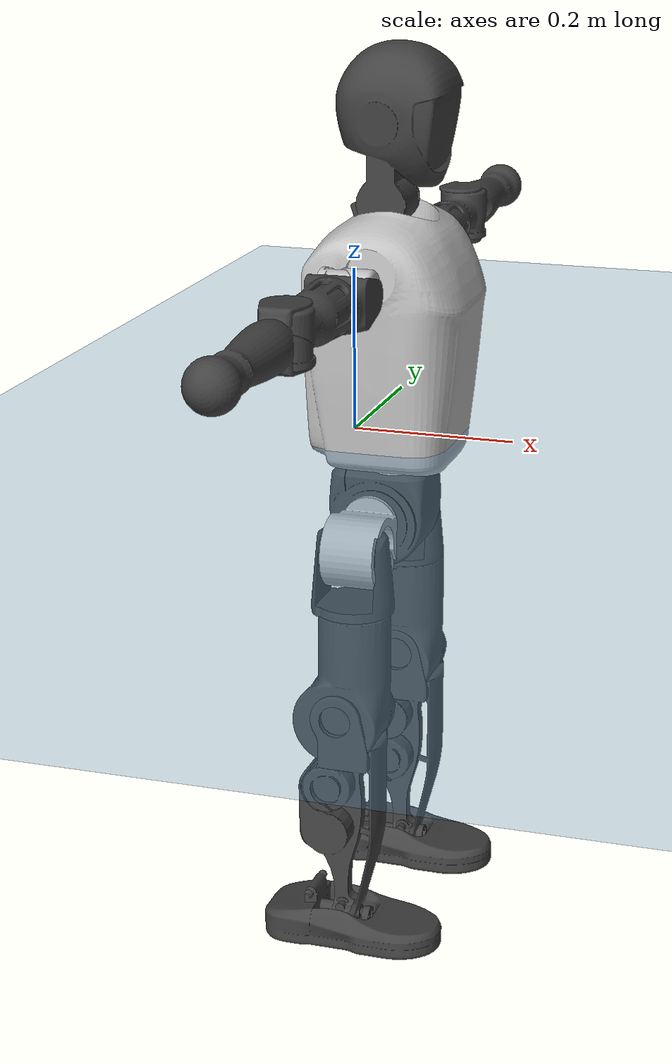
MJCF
<mujoco model="T1">
  <compiler angle="radian" assetdir="assets" balanceinertia="true" inertiafromgeom="false"/>

  <option timestep="0.005" density="1.2" viscosity="2e-05"/>

  <size nkey="1"/>

  <visual>
    <quality shadowsize="8192"/>
    <map shadowclip="0.5"/>
  </visual>

  <default>
    <default class="/">
      <joint armature="0.01" damping="0.01" frictionloss="0.1"/>
      <geom contype="0" conaffinity="0" group="1" solref="-1000 -80"/>
      <site size="0.01 0.005 0.005" group="5"/>
      <general forcelimited="true" biastype="affine" gainprm="25" biasprm="0 -25 -0.6"/>
      <default class="t1">
        <geom rgba="0.25 0.25 0.25 1"/>
        <default class="visual">
          <geom type="mesh" group="2"/>
        </default>
        <default class="collision">
          <geom group="3"/>
        </default>
        <default class="foot">
          <geom size="0.1115 0.05 0.015" type="box" condim="6" group="4" priority="1" solimp="0.015 1 0.015"/>
        </default>
        <default class="reward_collision_sphere">
          <geom group="5" rgba="1 0 0 1"/>
        </default>
      </default>
    </default>
  </default>

  <asset>
    <texture type="skybox" colorspace="auto" name="//unnamed_texture_0" builtin="gradient" rgb1="0.95 0.95 0.95" rgb2="0.95 0.95 0.95" width="100" height="600"/>
    <texture type="2d" colorspace="auto" name="texplane" builtin="checker" rgb1="0.345 0.575 0.748" rgb2="0.345 0.575 0.748" markrgb="1 1 1" width="512" height="512"/>
    <material name="MatPlane" class="/" texture="texplane" texuniform="true" texrepeat="2 2" specular="0.9"/>
    <mesh name="Trunk" class="/" file="Trunk.stl"/>
    <mesh name="H1" class="/" file="H1.stl"/>
    <mesh name="H2" class="/" file="H2.stl"/>
    <mesh name="AL1" class="/" file="AL1.stl"/>
    <mesh name="AL2" class="/" file="AL2.stl"/>
    <mesh name="AL3" class="/" file="AL3.stl"/>
    <mesh name="left_hand_link" class="/" file="left_hand_link.stl"/>
    <mesh name="AR1" class="/" file="AR1.stl"/>
    <mesh name="AR2" class="/" file="AR2.stl"/>
    <mesh name="AR3" class="/" file="AR3.stl"/>
    <mesh name="right_hand_link" class="/" file="right_hand_link.stl"/>
    <mesh name="Waist" class="/" file="Waist.stl"/>
    <mesh name="Hip_Pitch_Left" class="/" file="Hip_Pitch_Left.stl"/>
    <mesh name="Hip_Roll_Left" class="/" file="Hip_Roll_Left.stl"/>
    <mesh name="Hip_Yaw_Left" class="/" file="Hip_Yaw_Left.stl"/>
    <mesh name="Shank_Left" class="/" file="Shank_Left.stl"/>
    <mesh name="Ankle_Cross_Left" class="/" file="Ankle_Cross_Left.stl"/>
    <mesh name="left_foot_link" class="/" file="left_foot_link.stl"/>
    <mesh name="Hip_Pitch_Right" class="/" file="Hip_Pitch_Right.stl"/>
    <mesh name="Hip_Roll_Right" class="/" file="Hip_Roll_Right.stl"/>
    <mesh name="Hip_Yaw_Right" class="/" file="Hip_Yaw_Right.stl"/>
    <mesh name="Shank_Right" class="/" file="Shank_Right.stl"/>
    <mesh name="Ankle_Cross_Right" class="/" file="Ankle_Cross_Right.stl"/>
    <mesh name="right_foot_link" class="/" file="right_foot_link.stl"/>
  </asset>

  <worldbody>
    <geom name="floor" class="/" size="100 100 0.125" type="plane" group="0" material="MatPlane"/>
    <light name="toplight_shadow" class="/" pos="0 0 5" dir="0.0990148 0.0990148 -0.990148" type="directional" ambient="0.04 0.04 0.04" diffuse="0.55 0.55 0.55" specular="0.12 0.12 0.12"/>
    <light name="toplight_fill" class="/" pos="0 0 5" dir="0.0990148 0.0990148 -0.990148" type="directional" castshadow="false" ambient="0.04 0.04 0.04" diffuse="0.3 0.3 0.3" specular="0.08 0.08 0.08"/>
    <body name="trunk" childclass="t1" pos="-0.00236613 -0.00194546 0.00256522" quat="1 -0.000155396 -6.11289e-05 0.000854721">
      <inertial pos="0.0383279 0.000701923 0.100088" quat="0.999951 0.00147348 -0.00963794 -0.00160802" mass="7.35398" diaginertia="0.0156865 0.0557548 0.0394836"/>
      <joint name="//unnamed_joint_0" type="free" armature="0" damping="0" frictionloss="0"/>
      <geom name="//unnamed_geom_1" class="visual" rgba="0.76 0.76 0.76 1" mesh="Trunk"/>
      <geom name="//unnamed_geom_2" class="collision" size="0.0642604 0.0856806 0.128521" pos="0.0418804 0 0.111534" type="box"/>
      <geom name="//unnamed_geom_3" class="reward_collision_sphere" size="0.0985327" pos="0.0418804 0 0.0929446"/>
      <geom name="//unnamed_geom_4" class="reward_collision_sphere" size="0.0128521" pos="0.0418804 0.0801519 0"/>
      <geom name="//unnamed_geom_5" class="reward_collision_sphere" size="0.0128521" pos="0.0418804 -0.0801519 0"/>
      <geom name="//unnamed_geom_6" class="reward_collision_sphere" size="0.0128521" pos="0.0418804 0.100897 0.1673"/>
      <geom name="//unnamed_geom_7" class="reward_collision_sphere" size="0.0128521" pos="0.0418804 -0.100897 0.1673"/>
      <site name="imu" pos="0.0128248 -0.00742224 0.00653984" size="0.00856806"/>
      <camera name="track" pos="0 -1.88593 0" quat="0.707107 0.707107 0 0" mode="trackcom"/>
      <camera name="ego_camera" pos="0.0851569 0 0.390367" quat="-0.5 -0.5 0.5 0.5"/>
      <body name="H1" pos="0.0449241 0.00160832 0.222938" quat="1 7.40124e-06 8.27665e-05 -0.000146383">
        <inertial pos="-0.00327391 0.000741496 0.0558982" quat="0.76421 -0.0126363 0.00225597 0.64484" mass="0.268586" diaginertia="3.84019e-05 0.000166305 0.000100496"/>
        <joint name="AAHead_yaw" pos="0 0 0" axis="-0.00285315 0.000421781 0.999996" stiffness="0.00111276" range="-1.62027 1.52339" armature="0.00747896" damping="0.00487489" frictionloss="0.0864394"/>
        <geom name="//unnamed_geom_8" class="visual" mesh="H1"/>
        <body name="H2" pos="0.000403949 -0.000104265 0.0600563" quat="1 0.00017058 -0.000127925 -2.41002e-05">
          <inertial pos="0.00530771 0.0020261 0.0915184" quat="0.987764 0.100661 -0.0816635 -0.0867261" mass="0.390763" diaginertia="0.00031765 0.0014416 0.00118476"/>
          <joint name="Head_pitch" pos="0 0 0" axis="-0.000402564 -1 -0.000589807" stiffness="0.00010486" range="-1.19995 0.332704" armature="0.00799536" damping="0.0131275" frictionloss="0.0799093"/>
          <geom name="//unnamed_geom_9" class="visual" mesh="H2"/>
          <geom name="//unnamed_geom_10" class="collision" size="0.0685445" pos="0.00698007 0 0.102239"/>
          <geom name="//unnamed_geom_11" class="reward_collision_sphere" size="0.0771125" pos="0.0139601 0 0.0929446"/>
        </body>
      </body>
      <body name="AL1" pos="0.0413471 0.102356 0.202119" quat="1 -4.00906e-05 0.000517106 0.000132395">
        <inertial pos="-0.00365523 0.0417563 0.000452674" quat="0.503943 0.496727 -0.505738 0.493491" mass="0.335253" diaginertia="0.000227498 0.00100729 0.000210266"/>
        <joint name="Left_Shoulder_Pitch" pos="0 0 0" axis="0.00665284 0.999872 -0.0145444" stiffness="0.00580067" range="-3.30176 1.27076" armature="0.00897184" damping="0.00956394" frictionloss="0.0858301"/>
        <geom name="//unnamed_geom_12" class="visual" rgba="0.76 0.76 0.76 1" mesh="AL1"/>
        <body name="AL2" pos="0.000276886 0.0448888 -0.00266022" quat="1 -0.000184426 -9.48713e-05 0.000108102">
          <inertial pos="0.00116693 0.0327956 0.000380042" quat="0.487973 0.511622 -0.488799 0.511078" mass="0.0975755" diaginertia="6.49987e-05 0.000254775 0.000120393"/>
          <joint name="Left_Shoulder_Roll" pos="0 0 0" axis="-0.999999 -0.000410932 -0.00105537" range="-1.62632 1.79668" armature="0.00876629" damping="0.0118432" frictionloss="0.0883516"/>
          <geom name="//unnamed_geom_13" class="visual" mesh="AL2"/>
          <body name="AL3" pos="0.00267374 0.0564567 0.0031932" quat="0.999999 0.000791433 -0.000909299 0.000505537">
            <inertial pos="-0.00119665 0.0793753 -0.00060801" quat="0.706372 0.707841 -0.000307985 -9.10278e-05" mass="0.66406" diaginertia="0.00221016 0.00939052 0.000426117"/>
            <joint name="Left_Elbow_Pitch" pos="0 0 0" axis="-0.00296965 -0.99999 0.00326685" range="-2.2728 2.27251" armature="0.00749116" damping="0.017269" frictionloss="0.0844138"/>
            <geom name="//unnamed_geom_14" class="visual" mesh="AL3"/>
            <geom name="//unnamed_geom_15" class="collision" size="0.0257042 0.0642604" pos="0 0.0471482 0" quat="0.707105 0.707108 0 0" type="cylinder"/>
            <geom name="//unnamed_geom_16" class="reward_collision_sphere" size="0.030845"/>
            <body name="left_hand_link" pos="-0.00218276 0.139679 7.95356e-05" quat="1 -0.000464523 0.000298651 -0.000543992">
              <inertial pos="0.000537141 0.100781 0.00326235" quat="0.708523 0.705543 0.00110431 -0.0142228" mass="0.198374" diaginertia="0.00136326 0.00602037 0.000143031"/>
              <joint name="Left_Elbow_Yaw" pos="0 0 0" axis="-0.00158198 0.00184954 0.999997" stiffness="0.00905078" range="-2.44181 -0.0441312" armature="0.00890162" damping="0.0110275" frictionloss="0.0859276"/>
              <geom name="//unnamed_geom_17" class="visual" mesh="left_hand_link"/>
              <geom name="//unnamed_geom_18" class="collision" size="0.0257042 0.0749705" pos="0 0.122585 0" quat="0.707105 0.707108 0 0" type="cylinder"/>
              <geom name="//unnamed_geom_19" class="reward_collision_sphere" size="0.0428403"/>
              <geom name="//unnamed_geom_20" class="reward_collision_sphere" size="0.0299882" pos="0 0.103726 0"/>
              <geom name="//unnamed_geom_21" class="reward_collision_sphere" size="0.0299882" pos="0 0.202737 0"/>
            </body>
          </body>
        </body>
      </body>
      <body name="AR1" pos="0.042523 -0.100494 0.20102" quat="1 -0.000274862 0.00042811 0.000290689">
        <inertial pos="-0.00199538 -0.0444977 0.000922704" quat="0.504485 0.495067 -0.504112 0.49626" mass="0.320945" diaginertia="0.000219802 0.000916805 0.000195962"/>
        <joint name="Right_Shoulder_Pitch" pos="0 0 0" axis="-0.00435386 -0.999986 0.00298013" stiffness="0.00753121" range="-1.17752 3.33204" armature="0.00946534" damping="0.00741206" frictionloss="0.096017"/>
        <geom name="//unnamed_geom_22" class="visual" rgba="0.76 0.76 0.76 1" mesh="AR1"/>
        <body name="AR2" pos="-0.000914578 -0.0463024 -0.00118507" quat="0.999999 0.000863816 0.000601985 -0.000773277">
          <inertial pos="-0.000232661 -0.0361154 -0.0024103" quat="0.520948 0.480362 -0.505799 0.491968" mass="0.101217" diaginertia="6.68123e-05 0.000261036 0.000122419"/>
          <joint name="Right_Shoulder_Roll" pos="0 0 0" axis="-0.999783 0.00484509 0.0202364" range="-1.7438 1.59111" armature="0.0080292" damping="0.00674925" frictionloss="0.0868739"/>
          <geom name="//unnamed_geom_23" class="visual" mesh="AR2"/>
          <body name="AR3" pos="0.000190192 -0.0591237 0.00128772" quat="0.999999 -0.00105632 5.69876e-05 -0.000307954">
            <inertial pos="0.000140893 -0.0816549 0.00185713" quat="0.708473 0.705738 0.000912905 -6.11456e-05" mass="0.618722" diaginertia="0.00202744 0.00918652 0.000404584"/>
            <joint name="Right_Elbow_Pitch" pos="0 0 0" axis="-0.00052858 1 0.000231495" range="-2.28261 2.27303" armature="0.00863177" damping="0.0139845" frictionloss="0.0864946"/>
            <geom name="//unnamed_geom_24" class="visual" mesh="AR3"/>
            <geom name="//unnamed_geom_25" class="collision" size="0.0257042 0.0642604" pos="0 -0.0471482 0" quat="0.707105 0.707108 0 0" type="cylinder"/>
            <geom name="//unnamed_geom_26" class="reward_collision_sphere" size="0.030845"/>
            <body name="right_hand_link" pos="-0.00329161 -0.138831 -3.17377e-05" quat="1 0.00011106 -1.33731e-05 -8.31439e-05">
              <inertial pos="-0.000261074 -0.101505 0.000502794" quat="0.707592 0.706614 0.00199411 0.00222329" mass="0.201927" diaginertia="0.00136436 0.00613201 0.000145755"/>
              <joint name="Right_Elbow_Yaw" pos="0 0 0" axis="-0.000900305 -0.00211674 0.999997" stiffness="0.00335348" range="-0.0334569 2.44106" armature="0.0073752" damping="0.00989238" frictionloss="0.0978254"/>
              <geom name="//unnamed_geom_27" class="visual" mesh="right_hand_link"/>
              <geom name="//unnamed_geom_28" class="collision" size="0.0257042 0.0749705" pos="0 -0.122585 0" quat="0.707105 0.707108 0 0" type="cylinder"/>
              <geom name="//unnamed_geom_29" class="reward_collision_sphere" size="0.0428403"/>
              <geom name="//unnamed_geom_30" class="reward_collision_sphere" size="0.0299882" pos="0 -0.103726 0"/>
              <geom name="//unnamed_geom_31" class="reward_collision_sphere" size="0.0299882" pos="0 -0.202737 0"/>
            </body>
          </body>
        </body>
      </body>
      <body name="Waist" pos="0.0437782 -0.00390259 -0.104868" quat="1 -0.000516399 0.00011885 -0.000467535">
        <inertial pos="0.000145778 0.00211211 0.00414229" quat="0.983695 -0.00356985 -0.179726 0.00545722" mass="1.55993" diaginertia="0.000871584 0.00379033 0.0031825"/>
        <joint name="Waist" pos="0 0 0" axis="0.00912092 -0.0101864 0.999907" stiffness="0.00934473" range="-1.57436 1.59058" armature="0.00857313" damping="0.0120871" frictionloss="0.0866398"/>
        <geom name="//unnamed_geom_32" class="visual" mesh="Waist"/>
        <body name="Hip_Pitch_Left" pos="-0.00104292 0.0970688 0.000830116" quat="1 0.000159874 0.000219857 -0.000714788">
          <inertial pos="0.00197082 -0.00842304 -0.0165589" quat="0.974303 0.22451 0.0154655 0.0095025" mass="0.657325" diaginertia="0.00030346 0.00116056 0.000882555"/>
          <joint name="Left_Hip_Pitch" pos="0 0 0" axis="-0.00694543 0.999951 0.00703347" stiffness="0.00979921" range="-1.75397 1.56031" armature="0.0097876" damping="0.0115308" frictionloss="0.0813432"/>
          <geom name="//unnamed_geom_33" class="visual" rgba="0.76 0.76 0.76 1" mesh="Hip_Pitch_Left"/>
          <body name="Hip_Roll_Left" pos="0.000624177 -0.00322282 -0.0163259" quat="1 0.00012891 0.000126365 -0.000163333">
            <inertial pos="0.00153065 -0.000603513 -0.052615" quat="0.707186 -0.00598363 -0.00579362 0.706978" mass="0.23283" diaginertia="0.000273203 0.00108224 0.00034688"/>
            <joint name="Left_Hip_Roll" pos="0 0 0" axis="-0.999924 0.0104112 0.0066483" range="-1.57743 0.256865" armature="0.00894036" damping="0.010482" frictionloss="0.0962502"/>
            <geom name="//unnamed_geom_34" class="visual" mesh="Hip_Roll_Left"/>
            <geom name="//unnamed_geom_35" class="reward_collision_sphere" size="0.0471243"/>
            <body name="Hip_Yaw_Left" pos="0.00470049 -0.00346734 -0.0730326" quat="0.999999 0.000636557 0.00119425 0.000401142">
              <inertial pos="-0.00443939 0.000678758 -0.085692" quat="0.693635 -0.0266007 -0.0274178 0.719313" mass="1.36651" diaginertia="0.00413465 0.0188009 0.00177889"/>
              <joint name="Left_Hip_Yaw" pos="0 0 0" axis="0.000265726 0.000596463 -1" range="-1.01633 1.01335" armature="0.00832972" damping="0.0139321" frictionloss="0.087393"/>
              <geom name="//unnamed_geom_36" class="visual" mesh="Hip_Yaw_Left"/>
              <geom name="//unnamed_geom_37" class="collision" size="0.0428403 0.0685445" type="cylinder"/>
              <body name="Shank_Left" pos="-0.00535284 -0.00133092 -0.12033" quat="1 -5.73051e-05 0.000139312 -0.000130421">
                <inertial pos="-0.00658648 -0.000168586 -0.116162" quat="0.996776 -0.00694855 -0.0225825 0.076681" mass="1.10314" diaginertia="0.0059992 0.0257449 0.00126229"/>
                <joint name="Left_Knee_Pitch" pos="0 0 0" axis="-0.00859476 0.999957 -0.00334844" range="0.00192409 2.28393" armature="0.00987456" damping="0" frictionloss="0.0901749"/>
                <geom name="//unnamed_geom_38" class="visual" mesh="Shank_Left"/>
                <geom name="//unnamed_geom_39" class="collision" size="0.0428403 0.0642604" pos="0 0 -0.111534" type="cylinder"/>
                <geom name="//unnamed_geom_40" class="reward_collision_sphere" size="0.0556924"/>
                <body name="Ankle_Cross_Left" pos="0.00167084 -0.00105805 -0.261464" quat="0.999999 -0.00105735 -0.000788257 -0.000403512">
                  <inertial pos="-0.00270395 0.000459528 -0.00465212" quat="0.445853 0.551391 0.547636 0.444159" mass="0.0457967" diaginertia="4.65065e-06 1.92283e-05 8.12975e-06"/>
                  <joint name="Left_Ankle_Pitch" pos="0 0 0" axis="0.00080204 0.999999 0.00133831" range="-0.86569 0.347849" armature="0.00879503" damping="0.0177621" frictionloss="0.0813511"/>
                  <geom name="//unnamed_geom_41" class="visual" mesh="Ankle_Cross_Left"/>
                  <body name="left_foot_link" pos="-0.0027703 -0.00298235 -0.00910735" quat="1 1.66592e-05 -5.08195e-05 -3.65044e-05">
                    <inertial pos="-0.00268535 -0.00258168 -0.00823894" quat="-0.000575893 0.6264 -0.0023603 0.779498" mass="0.4304" diaginertia="0.000435536 0.00175438 0.00156343"/>
                    <joint name="Left_Ankle_Roll" pos="0 0 0" axis="-0.999998 0.000315722 -0.0018286" range="-0.408676 0.495917" armature="0.00870847" damping="0" frictionloss="0.0814808"/>
                    <geom name="//unnamed_geom_42" class="visual" mesh="left_foot_link"/>
                    <geom name="left_foot" class="foot" size="0.107642 0.0403167 0.013219" pos="0.00698007 0 -0.0139417"/>
                    <geom name="//unnamed_geom_44" class="reward_collision_sphere" size="0.0445539" pos="0.00698007 0 -0.0139417"/>
                    <geom name="//unnamed_geom_45" class="reward_collision_sphere" size="0.0257042" pos="0.0663107 -0.0216882 -0.0139417"/>
                    <geom name="//unnamed_geom_46" class="reward_collision_sphere" size="0.0257042" pos="-0.0488605 -0.0216882 -0.0139417"/>
                    <site name="left_foot" class="foot" pos="0.00698007 0 -0.0139417" size="0.00856806"/>
                  </body>
                </body>
              </body>
            </body>
          </body>
        </body>
        <body name="Hip_Pitch_Right" pos="-0.00341738 -0.10285 0.00120422" quat="1 -0.000158317 0.000597735 -0.000227353">
          <inertial pos="-0.000829794 0.00535819 -0.0183791" quat="0.974688 -0.222944 0.0140861 -0.00896078" mass="0.643083" diaginertia="0.000309778 0.00113137 0.000875512"/>
          <joint name="Right_Hip_Pitch" pos="0 0 0" axis="0.00109582 -0.999997 0.00240283" range="-1.59115 1.74126" armature="0.0075567" damping="0.00285621" frictionloss="0.0960663"/>
          <geom name="//unnamed_geom_47" class="visual" rgba="0.76 0.76 0.76 1" mesh="Hip_Pitch_Right"/>
          <body name="Hip_Roll_Right" pos="-0.00311442 -0.00177449 -0.0175907" quat="0.999999 0.000433517 0.00142449 -8.1403e-05">
            <inertial pos="-0.00170282 0.001669 -0.0471258" quat="0.704349 0.00322095 -0.00630013 0.709819" mass="0.250384" diaginertia="0.000293386 0.00111128 0.000362266"/>
            <joint name="Right_Hip_Roll" pos="0 0 0" axis="-1 0.000281565 -0.000323432" stiffness="0.00477503" range="-0.200186 1.55677" armature="0.00887617" damping="0.0148537" frictionloss="0.0972942"/>
            <geom name="//unnamed_geom_48" class="visual" mesh="Hip_Roll_Right"/>
            <geom name="//unnamed_geom_49" class="reward_collision_sphere" size="0.0471243"/>
            <body name="Hip_Yaw_Right" pos="8.18305e-05 -0.00163037 -0.080604" quat="1 0.000104572 0.00026136 0.000187323">
              <inertial pos="-0.00434517 -0.00142342 -0.0802372" quat="0.71561 -0.0308454 -0.0368425 0.696845" mass="1.39704" diaginertia="0.00435341 0.0187751 0.0018279"/>
              <joint name="Right_Hip_Yaw" pos="0 0 0" axis="-0.00151095 0.00668008 -0.999977" range="-0.994134 1.00716" armature="0.00854143" damping="0.0101461" frictionloss="0.076922"/>
              <geom name="//unnamed_geom_50" class="visual" mesh="Hip_Yaw_Right"/>
              <geom name="//unnamed_geom_51" class="collision" size="0.0428403 0.0685445" type="cylinder"/>
              <body name="Shank_Right" pos="-0.0110634 -0.00245811 -0.126721" quat="0.999999 0.00105366 -5.19813e-05 -1.14057e-05">
                <inertial pos="-0.00442631 -0.0023236 -0.114565" quat="0.99923 0.00947484 -0.0289089 -0.024784" mass="1.16689" diaginertia="0.00573355 0.0264117 0.00135083"/>
                <joint name="Right_Knee_Pitch" pos="0 0 0" axis="-0.00274855 -0.999991 -0.00308513" range="-2.37054 -0.0105371" armature="0.00804689" damping="0.00799849" frictionloss="0.0869565"/>
                <geom name="//unnamed_geom_52" class="visual" mesh="Shank_Right"/>
                <geom name="//unnamed_geom_53" class="collision" size="0.0428403 0.0642604" pos="0 0 -0.111534" type="cylinder"/>
                <geom name="//unnamed_geom_54" class="reward_collision_sphere" size="0.0556924"/>
                <body name="Ankle_Cross_Right" pos="-0.00084402 0.000474582 -0.264269" quat="1 -4.03078e-05 0.000106816 8.80803e-05">
                  <inertial pos="-0.00107309 0.00320304 -0.00731303" quat="0.443065 0.551116 0.550911 0.44324" mass="0.0437578" diaginertia="4.8413e-06 1.82369e-05 7.92697e-06"/>
                  <joint name="Right_Ankle_Pitch" pos="0 0 0" axis="0.00141919 -0.999962 0.00858944" range="-0.294018 0.818864" armature="0.00854383" damping="0.021143" frictionloss="0.0876548"/>
                  <geom name="//unnamed_geom_55" class="visual" mesh="Ankle_Cross_Right"/>
                  <body name="right_foot_link" pos="0.0022805 0.0012319 -0.0167785" quat="1 -3.67094e-05 -4.29647e-05 3.52597e-05">
                    <inertial pos="-0.000108216 0.00199261 -0.00894665" quat="-0.00106386 0.619983 0.0098639 0.784553" mass="0.41613" diaginertia="0.00044289 0.00178672 0.00149873"/>
                    <joint name="Right_Ankle_Roll" pos="0 0 0" axis="-0.999966 0.00115628 -0.00819341" range="-0.485053 0.464042" armature="0.00867921" damping="0.00900184" frictionloss="0.0970563"/>
                    <geom name="//unnamed_geom_56" class="visual" mesh="right_foot_link"/>
                    <geom name="right_foot" class="foot" size="0.0994403 0.0391693 0.0137062" pos="0.00698007 0 -0.0139417"/>
                    <geom name="//unnamed_geom_58" class="reward_collision_sphere" size="0.0342722"/>
                    <geom name="//unnamed_geom_59" class="reward_collision_sphere" size="0.0257042" pos="0.00698007 0 -0.0139417"/>
                    <geom name="//unnamed_geom_60" class="reward_collision_sphere" size="0.0257042" pos="0.0663107 0.0216882 -0.0139417"/>
                    <geom name="//unnamed_geom_61" class="reward_collision_sphere" size="0.0257042" pos="-0.0488605 0.0216882 -0.0139417"/>
                    <site name="right_foot" class="foot" pos="0.00698007 0 -0.0139417" size="0.00856806"/>
                  </body>
                </body>
              </body>
            </body>
          </body>
        </body>
      </body>
    </body>
  </worldbody>

  <contact>
    <pair class="/" geom1="floor" geom2="left_foot" name="//unnamed_contact_0"/>
    <pair class="/" geom1="floor" geom2="right_foot" name="//unnamed_contact_1"/>
  </contact>

  <actuator>
    <general name="AAHead_yaw" class="/" joint="AAHead_yaw" forcerange="-5.90793 5.90793" gainprm="19.9206" biasprm="0 -19.9206 -0.542159"/>
    <general name="Head_pitch" class="/" joint="Head_pitch" forcerange="-5.83042 5.83042" gainprm="19.9206" biasprm="0 -19.9206 -0.542159"/>
    <general name="Left_Shoulder_Pitch" class="/" joint="Left_Shoulder_Pitch" forcerange="-15.2539 15.2539" gainprm="19.9206" biasprm="0 -19.9206 -0.542159"/>
    <general name="Left_Shoulder_Roll" class="/" joint="Left_Shoulder_Roll" forcerange="-14.3487 14.3487" gainprm="19.9206" biasprm="0 -19.9206 -0.542159"/>
    <general name="Left_Elbow_Pitch" class="/" joint="Left_Elbow_Pitch" forcerange="-17.0803 17.0803" gainprm="19.9206" biasprm="0 -19.9206 -0.542159"/>
    <general name="Left_Elbow_Yaw" class="/" joint="Left_Elbow_Yaw" forcerange="-15.5416 15.5416" gainprm="19.9206" biasprm="0 -19.9206 -0.542159"/>
    <general name="Right_Shoulder_Pitch" class="/" joint="Right_Shoulder_Pitch" forcerange="-15.2378 15.2378" gainprm="19.9206" biasprm="0 -19.9206 -0.542159"/>
    <general name="Right_Shoulder_Roll" class="/" joint="Right_Shoulder_Roll" forcerange="-16.949 16.949" gainprm="19.9206" biasprm="0 -19.9206 -0.542159"/>
    <general name="Right_Elbow_Pitch" class="/" joint="Right_Elbow_Pitch" forcerange="-15.6802 15.6802" gainprm="19.9206" biasprm="0 -19.9206 -0.542159"/>
    <general name="Right_Elbow_Yaw" class="/" joint="Right_Elbow_Yaw" forcerange="-14.5254 14.5254" gainprm="19.9206" biasprm="0 -19.9206 -0.542159"/>
    <general name="Waist" class="/" joint="Waist" forcerange="-23.6808 23.6808" gainprm="19.9206" biasprm="0 -19.9206 -0.542159"/>
    <general name="Left_Hip_Pitch" class="/" joint="Left_Hip_Pitch" forcerange="-37.6488 37.6488" gainprm="19.9206" biasprm="0 -19.9206 -0.542159"/>
    <general name="Left_Hip_Roll" class="/" joint="Left_Hip_Roll" forcerange="-27.9203 27.9203" gainprm="19.9206" biasprm="0 -19.9206 -0.542159"/>
    <general name="Left_Hip_Yaw" class="/" joint="Left_Hip_Yaw" forcerange="-22.9969 22.9969" gainprm="19.9206" biasprm="0 -19.9206 -0.542159"/>
    <general name="Left_Knee_Pitch" class="/" joint="Left_Knee_Pitch" forcerange="-51.7052 51.7052" gainprm="19.9206" biasprm="0 -19.9206 -0.542159"/>
    <general name="Left_Ankle_Pitch" class="/" joint="Left_Ankle_Pitch" forcerange="-17.2796 17.2796" gainprm="19.9206" biasprm="0 -19.9206 -0.542159"/>
    <general name="Left_Ankle_Roll" class="/" joint="Left_Ankle_Roll" forcerange="-13.7779 13.7779" gainprm="19.9206" biasprm="0 -19.9206 -0.542159"/>
    <general name="Right_Hip_Pitch" class="/" joint="Right_Hip_Pitch" forcerange="-41.0589 41.0589" gainprm="19.9206" biasprm="0 -19.9206 -0.542159"/>
    <general name="Right_Hip_Roll" class="/" joint="Right_Hip_Roll" forcerange="-26.1472 26.1472" gainprm="19.9206" biasprm="0 -19.9206 -0.542159"/>
    <general name="Right_Hip_Yaw" class="/" joint="Right_Hip_Yaw" forcerange="-25.4916 25.4916" gainprm="19.9206" biasprm="0 -19.9206 -0.542159"/>
    <general name="Right_Knee_Pitch" class="/" joint="Right_Knee_Pitch" forcerange="-56.6288 56.6288" gainprm="19.9206" biasprm="0 -19.9206 -0.542159"/>
    <general name="Right_Ankle_Pitch" class="/" joint="Right_Ankle_Pitch" forcerange="-16.7265 16.7265" gainprm="19.9206" biasprm="0 -19.9206 -0.542159"/>
    <general name="Right_Ankle_Roll" class="/" joint="Right_Ankle_Roll" forcerange="-13.9704 13.9704" gainprm="19.9206" biasprm="0 -19.9206 -0.542159"/>
  </actuator>

  <sensor>
    <gyro site="imu" name="imu_angular_velocity"/>
    <velocimeter site="imu" name="imu_linear_velocity"/>
    <framelinvel objtype="site" objname="left_foot" name="left_foot_global_linear_velocity"/>
    <framelinvel objtype="site" objname="right_foot" name="right_foot_global_linear_velocity"/>
  </sensor>

  <keyframe>
    <key name="home" qpos="0 0 0.6385 1 0 0 0 0 0 0 1.4 0 -0.4 0 -1.4 0 0.4 0 -0.4 0 0 0.8 -0.4 0 0.4 0 0 -0.8 0.4 0"/>
  </keyframe>
</mujoco>
